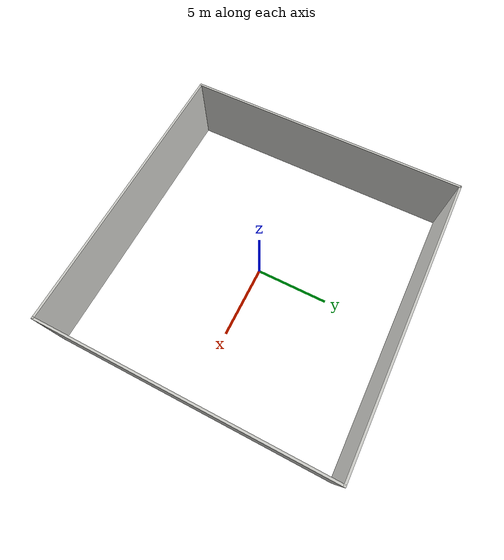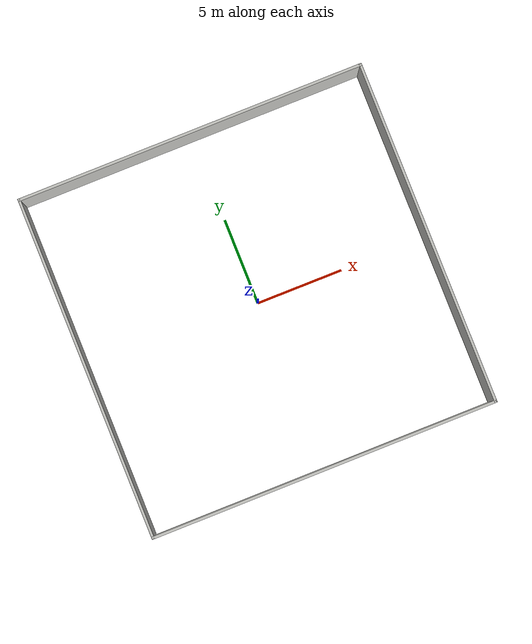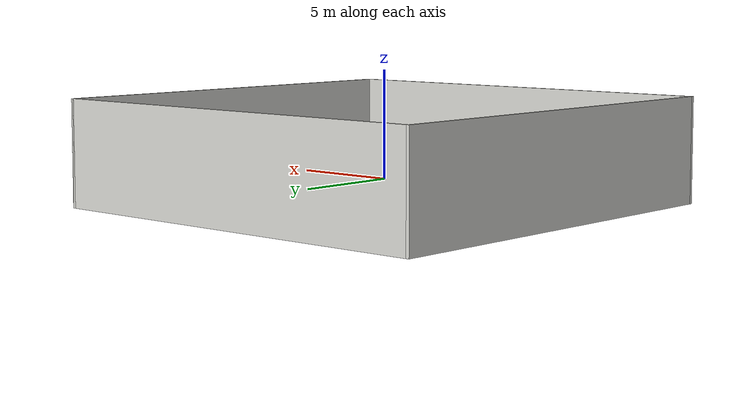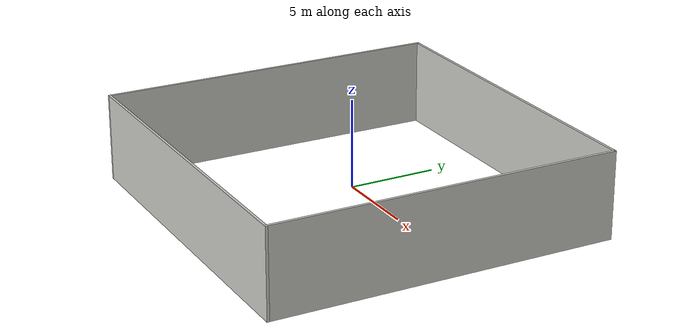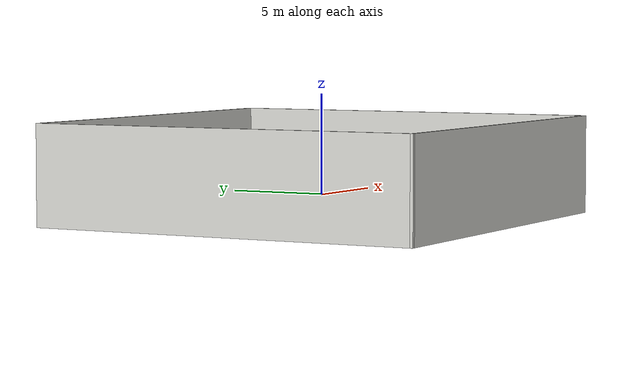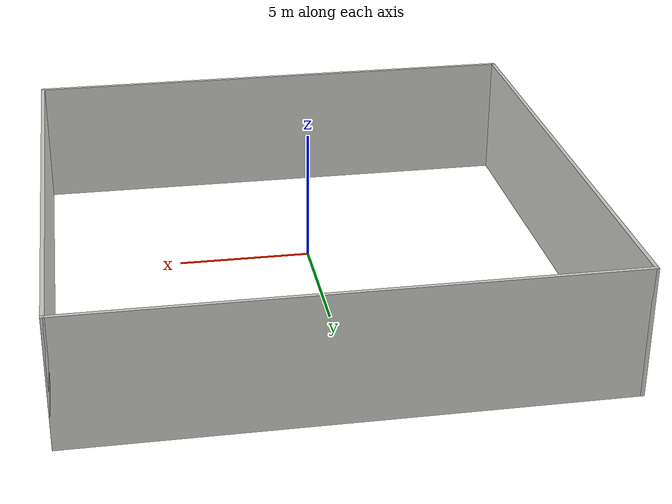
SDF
<?xml version='1.0'?>
<sdf version='1.7'>
  <model name='Room'>
    <pose>-0.057202 -0.004957 0 0 -0 0</pose>
    <link name='Wall_3'>
      <collision name='Wall_3_Collision'>
        <geometry>
          <box>
            <size>20 0.15 5</size>
          </box>
        </geometry>
        <pose>0 0 1.25 0 -0 0</pose>
      </collision>
      <visual name='Wall_3_Visual'>
        <pose>0 0 1.25 0 -0 0</pose>
        <geometry>
          <box>
            <size>20 0.15 5</size>
          </box>
        </geometry>
        <material>
          <script>
            <uri>file://media/materials/scripts/gazebo.material</uri>
            <name>Gazebo/CeilingTiled</name>
          </script>
          <ambient>1 1 1 1</ambient>
        </material>
        <meta>
          <layer>0</layer>
        </meta>
      </visual>
      <pose>-10.05 -0 0 0 -0 1.5708</pose>
    </link>
    <link name='Wall_5'>
      <collision name='Wall_5_Collision'>
        <geometry>
          <box>
            <size>20.25 0.15 5</size>
          </box>
        </geometry>
        <pose>0 0 1.25 0 -0 0</pose>
      </collision>
      <visual name='Wall_5_Visual'>
        <pose>0 0 1.25 0 -0 0</pose>
        <geometry>
          <box>
            <size>20.25 0.15 5</size>
          </box>
        </geometry>
        <material>
          <script>
            <uri>file://media/materials/scripts/gazebo.material</uri>
            <name>Gazebo/CeilingTiled</name>
          </script>
          <ambient>1 1 1 1</ambient>
        </material>
        <meta>
          <layer>0</layer>
        </meta>
      </visual>
      <pose>0 9.925 0 0 -0 0</pose>
    </link>
    <link name='Wall_6'>
      <collision name='Wall_6_Collision'>
        <geometry>
          <box>
            <size>20 0.15 5</size>
          </box>
        </geometry>
        <pose>0 0 1.25 0 -0 0</pose>
      </collision>
      <visual name='Wall_6_Visual'>
        <pose>0 0 1.25 0 -0 0</pose>
        <geometry>
          <box>
            <size>20 0.15 5</size>
          </box>
        </geometry>
        <material>
          <script>
            <uri>file://media/materials/scripts/gazebo.material</uri>
            <name>Gazebo/CeilingTiled</name>
          </script>
          <ambient>1 1 1 1</ambient>
        </material>
        <meta>
          <layer>0</layer>
        </meta>
      </visual>
      <pose>10.05 -0 0 0 -0 -1.5708</pose>
    </link>
    <link name='Wall_7'>
      <collision name='Wall_7_Collision'>
        <geometry>
          <box>
            <size>20.25 0.15 5</size>
          </box>
        </geometry>
        <pose>0 0 1.25 0 -0 0</pose>
      </collision>
      <visual name='Wall_7_Visual'>
        <pose>0 0 1.25 0 -0 0</pose>
        <geometry>
          <box>
            <size>20.25 0.15 5</size>
          </box>
        </geometry>
        <material>
          <script>
            <uri>file://media/materials/scripts/gazebo.material</uri>
            <name>Gazebo/CeilingTiled</name>
          </script>
          <ambient>1 1 1 1</ambient>
        </material>
        <meta>
          <layer>0</layer>
        </meta>
      </visual>
      <pose>0 -9.925 0 0 -0 3.14159</pose>
    </link>
    <static>1</static>
  </model>
</sdf>
